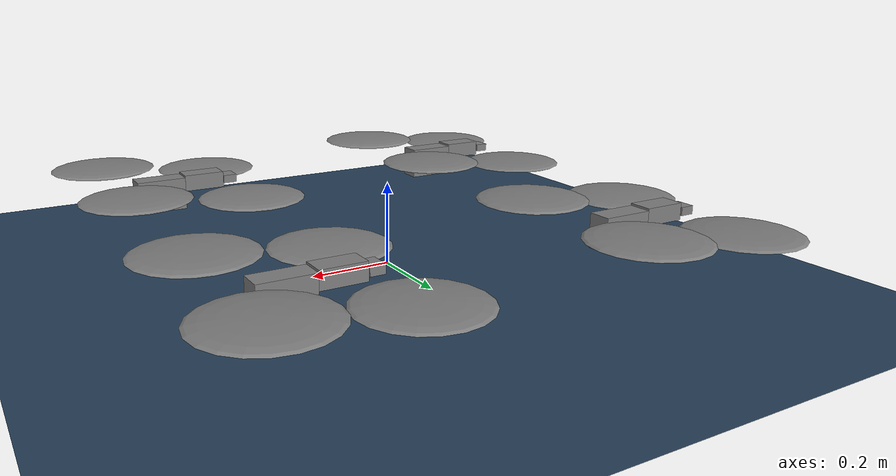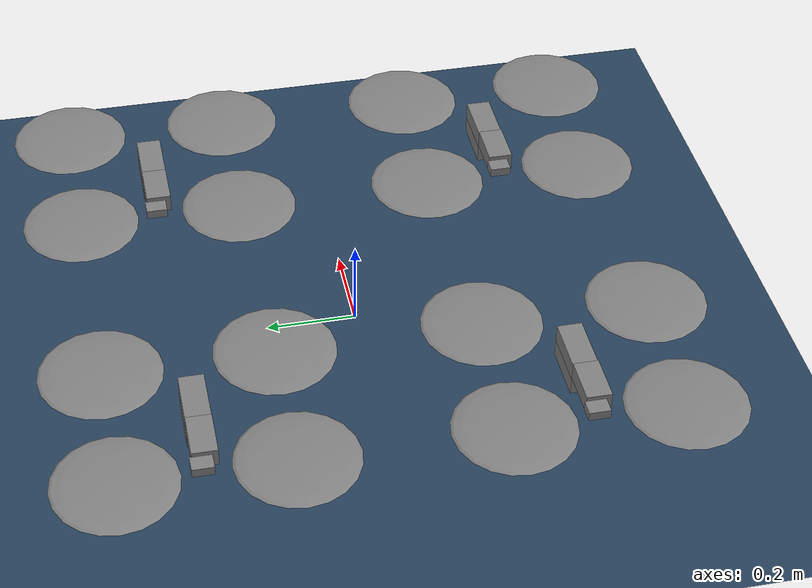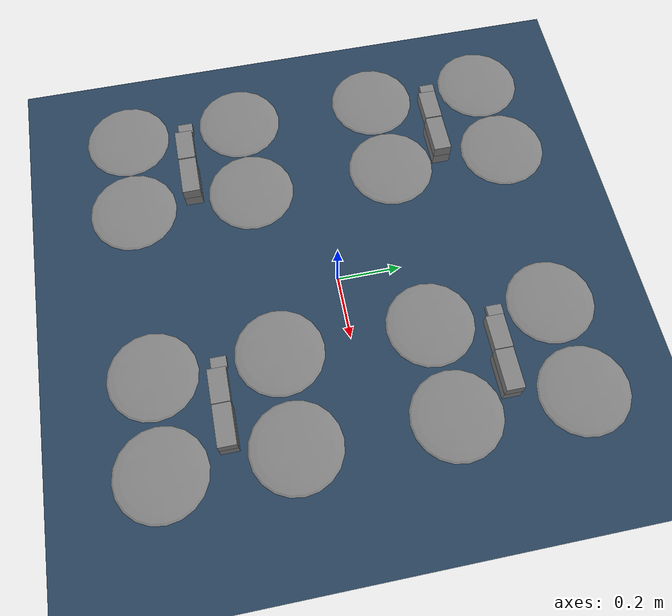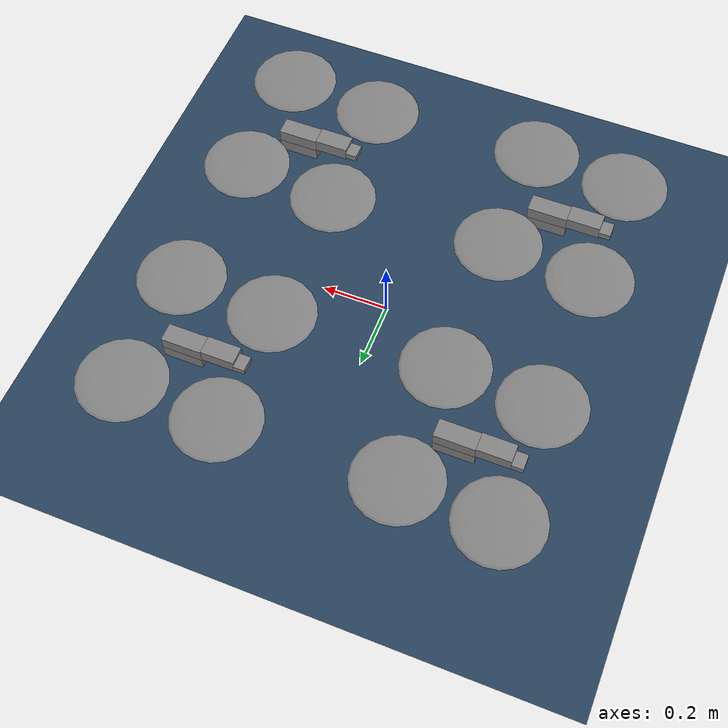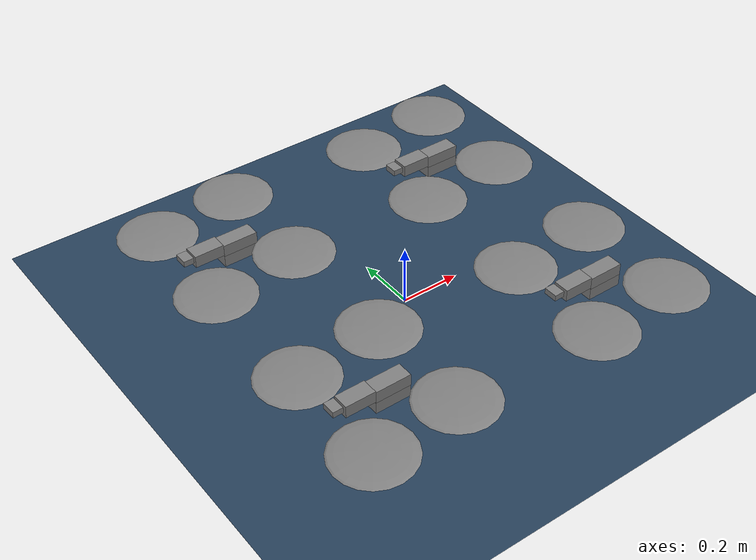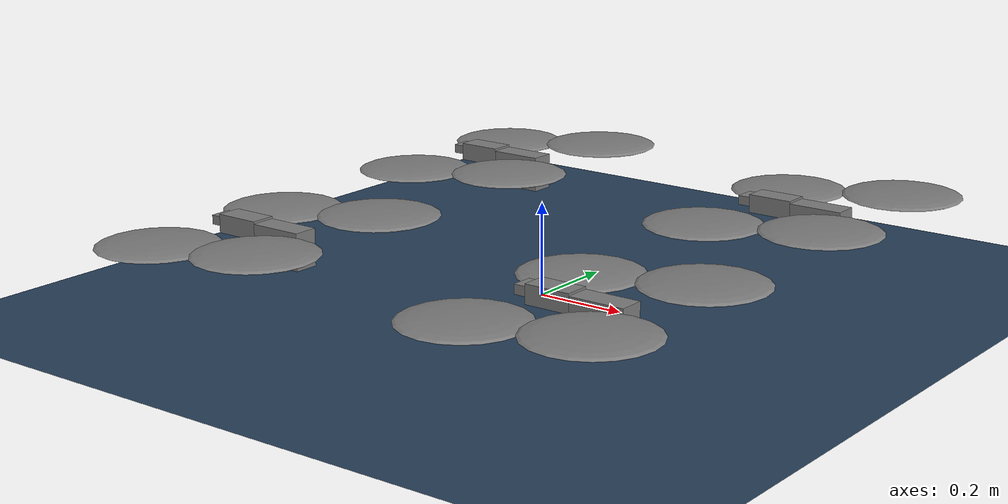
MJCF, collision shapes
<mujoco model="Skydio X2 swarm scene">
  <compiler autolimits="true" assetdir="mujoco_menagerie-main/skydio_x2/assets"/>

  <option timestep="0.01" density="1.225" viscosity="1.8e-5"/>

  <statistic center="0 0 0.5" extent="2.5" meansize=".05"/>

  <default>
    <default class="x2">
      <geom mass="0"/>
      <motor ctrlrange="0 13"/>
      <mesh scale="0.01 0.01 0.01"/>
      <default class="visual">
        <geom group="2" type="mesh" contype="0" conaffinity="0"/>
      </default>
      <default class="collision">
        <geom group="3" type="box"/>
        <default class="rotor">
          <geom type="ellipsoid" size=".13 .13 .01"/>
        </default>
      </default>
      <site group="5"/>
    </default>
  </default>

  <visual>
    <headlight diffuse="0.8 0.8 0.8" ambient="0.3 0.3 0.3" specular="0 0 0"/>
    <rgba haze="0.15 0.25 0.35 1"/>
    <global azimuth="-20" elevation="-20" ellipsoidinertia="true"/>
  </visual>

  <asset>
    <texture type="skybox" builtin="gradient" rgb1="0.3 0.5 0.7" rgb2="0 0 0" width="512" height="3072"/>
    <texture type="2d" name="groundplane" builtin="checker" mark="edge" rgb1="0.2 0.3 0.4" rgb2="0.1 0.2 0.3"
      markrgb="0.8 0.8 0.8" width="300" height="300"/>
    <material name="groundplane" texture="groundplane" texuniform="true" texrepeat="5 5" reflectance="0.2"/>

    <texture type="2d" file="X2_lowpoly_texture_SpinningProps_1024.png"/>
    <material name="phong3SG" texture="X2_lowpoly_texture_SpinningProps_1024"/>
    <material name="invisible" rgba="0 0 0 0"/>
    <mesh class="x2" file="X2_lowpoly.obj"/>
  </asset>

  <worldbody>
    <light pos="0 0 2.5" dir="0 0 -1" directional="true"/>
    <camera name="overview" pos="0 -5 2.5" xyaxes="1 0 0 0 0.4 1"/>
    <geom name="floor" size="0 0 0.05" type="plane" material="groundplane"/>

    <body name="drone0_x2" pos="-0.4 -0.4 0.1" childclass="x2">
      <freejoint name="drone0_freejoint"/>
      <site name="drone0_imu" pos="0 0 .02"/>
      <geom material="phong3SG" mesh="X2_lowpoly" class="visual" quat="0 0 1 1"/>
      <geom class="collision" size=".06 .027 .02" pos=".04 0 .02"/>
      <geom class="collision" size=".06 .027 .02" pos=".04 0 .06"/>
      <geom class="collision" size=".05 .027 .02" pos="-.07 0 .065"/>
      <geom class="collision" size=".023 .017 .01" pos="-.137 .008 .065" quat="1 0 0 1"/>
      <geom class="rotor" pos="-.14 -.18 .05" mass=".25"/>
      <geom class="rotor" pos="-.14 .18 .05" mass=".25"/>
      <geom class="rotor" pos=".14 .18 .08" mass=".25"/>
      <geom class="rotor" pos=".14 -.18 .08" mass=".25"/>
      <geom size=".16 .04 .02" pos="0 0 0.02" type="ellipsoid" mass=".325" class="visual" material="invisible"/>
      <site name="drone0_thrust1" pos="-.14 -.18 .05"/>
      <site name="drone0_thrust2" pos="-.14 .18 .05"/>
      <site name="drone0_thrust3" pos=".14 .18 .08"/>
      <site name="drone0_thrust4" pos=".14 -.18 .08"/>
    </body>

    <body name="drone1_x2" pos="0.4 -0.4 0.1" childclass="x2">
      <freejoint name="drone1_freejoint"/>
      <site name="drone1_imu" pos="0 0 .02"/>
      <geom material="phong3SG" mesh="X2_lowpoly" class="visual" quat="0 0 1 1"/>
      <geom class="collision" size=".06 .027 .02" pos=".04 0 .02"/>
      <geom class="collision" size=".06 .027 .02" pos=".04 0 .06"/>
      <geom class="collision" size=".05 .027 .02" pos="-.07 0 .065"/>
      <geom class="collision" size=".023 .017 .01" pos="-.137 .008 .065" quat="1 0 0 1"/>
      <geom class="rotor" pos="-.14 -.18 .05" mass=".25"/>
      <geom class="rotor" pos="-.14 .18 .05" mass=".25"/>
      <geom class="rotor" pos=".14 .18 .08" mass=".25"/>
      <geom class="rotor" pos=".14 -.18 .08" mass=".25"/>
      <geom size=".16 .04 .02" pos="0 0 0.02" type="ellipsoid" mass=".325" class="visual" material="invisible"/>
      <site name="drone1_thrust1" pos="-.14 -.18 .05"/>
      <site name="drone1_thrust2" pos="-.14 .18 .05"/>
      <site name="drone1_thrust3" pos=".14 .18 .08"/>
      <site name="drone1_thrust4" pos=".14 -.18 .08"/>
    </body>

    <body name="drone2_x2" pos="-0.4 0.4 0.1" childclass="x2">
      <freejoint name="drone2_freejoint"/>
      <site name="drone2_imu" pos="0 0 .02"/>
      <geom material="phong3SG" mesh="X2_lowpoly" class="visual" quat="0 0 1 1"/>
      <geom class="collision" size=".06 .027 .02" pos=".04 0 .02"/>
      <geom class="collision" size=".06 .027 .02" pos=".04 0 .06"/>
      <geom class="collision" size=".05 .027 .02" pos="-.07 0 .065"/>
      <geom class="collision" size=".023 .017 .01" pos="-.137 .008 .065" quat="1 0 0 1"/>
      <geom class="rotor" pos="-.14 -.18 .05" mass=".25"/>
      <geom class="rotor" pos="-.14 .18 .05" mass=".25"/>
      <geom class="rotor" pos=".14 .18 .08" mass=".25"/>
      <geom class="rotor" pos=".14 -.18 .08" mass=".25"/>
      <geom size=".16 .04 .02" pos="0 0 0.02" type="ellipsoid" mass=".325" class="visual" material="invisible"/>
      <site name="drone2_thrust1" pos="-.14 -.18 .05"/>
      <site name="drone2_thrust2" pos="-.14 .18 .05"/>
      <site name="drone2_thrust3" pos=".14 .18 .08"/>
      <site name="drone2_thrust4" pos=".14 -.18 .08"/>
    </body>

    <body name="drone3_x2" pos="0.4 0.4 0.1" childclass="x2">
      <freejoint name="drone3_freejoint"/>
      <site name="drone3_imu" pos="0 0 .02"/>
      <geom material="phong3SG" mesh="X2_lowpoly" class="visual" quat="0 0 1 1"/>
      <geom class="collision" size=".06 .027 .02" pos=".04 0 .02"/>
      <geom class="collision" size=".06 .027 .02" pos=".04 0 .06"/>
      <geom class="collision" size=".05 .027 .02" pos="-.07 0 .065"/>
      <geom class="collision" size=".023 .017 .01" pos="-.137 .008 .065" quat="1 0 0 1"/>
      <geom class="rotor" pos="-.14 -.18 .05" mass=".25"/>
      <geom class="rotor" pos="-.14 .18 .05" mass=".25"/>
      <geom class="rotor" pos=".14 .18 .08" mass=".25"/>
      <geom class="rotor" pos=".14 -.18 .08" mass=".25"/>
      <geom size=".16 .04 .02" pos="0 0 0.02" type="ellipsoid" mass=".325" class="visual" material="invisible"/>
      <site name="drone3_thrust1" pos="-.14 -.18 .05"/>
      <site name="drone3_thrust2" pos="-.14 .18 .05"/>
      <site name="drone3_thrust3" pos=".14 .18 .08"/>
      <site name="drone3_thrust4" pos=".14 -.18 .08"/>
    </body>
  </worldbody>

  <actuator>
    <motor class="x2" name="drone0_thrust1" site="drone0_thrust1" gear="0 0 1 0 0 .0201"/>
    <motor class="x2" name="drone0_thrust2" site="drone0_thrust2" gear="0 0 1 0 0 -.0201"/>
    <motor class="x2" name="drone0_thrust3" site="drone0_thrust3" gear="0 0 1 0 0 .0201"/>
    <motor class="x2" name="drone0_thrust4" site="drone0_thrust4" gear="0 0 1 0 0 -.0201"/>

    <motor class="x2" name="drone1_thrust1" site="drone1_thrust1" gear="0 0 1 0 0 .0201"/>
    <motor class="x2" name="drone1_thrust2" site="drone1_thrust2" gear="0 0 1 0 0 -.0201"/>
    <motor class="x2" name="drone1_thrust3" site="drone1_thrust3" gear="0 0 1 0 0 .0201"/>
    <motor class="x2" name="drone1_thrust4" site="drone1_thrust4" gear="0 0 1 0 0 -.0201"/>

    <motor class="x2" name="drone2_thrust1" site="drone2_thrust1" gear="0 0 1 0 0 .0201"/>
    <motor class="x2" name="drone2_thrust2" site="drone2_thrust2" gear="0 0 1 0 0 -.0201"/>
    <motor class="x2" name="drone2_thrust3" site="drone2_thrust3" gear="0 0 1 0 0 .0201"/>
    <motor class="x2" name="drone2_thrust4" site="drone2_thrust4" gear="0 0 1 0 0 -.0201"/>

    <motor class="x2" name="drone3_thrust1" site="drone3_thrust1" gear="0 0 1 0 0 .0201"/>
    <motor class="x2" name="drone3_thrust2" site="drone3_thrust2" gear="0 0 1 0 0 -.0201"/>
    <motor class="x2" name="drone3_thrust3" site="drone3_thrust3" gear="0 0 1 0 0 .0201"/>
    <motor class="x2" name="drone3_thrust4" site="drone3_thrust4" gear="0 0 1 0 0 -.0201"/>
  </actuator>
</mujoco>
